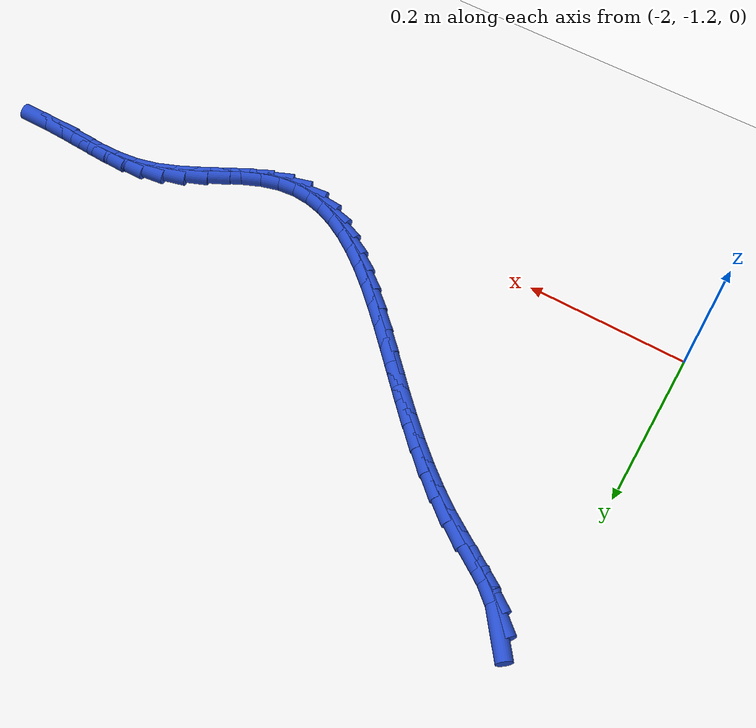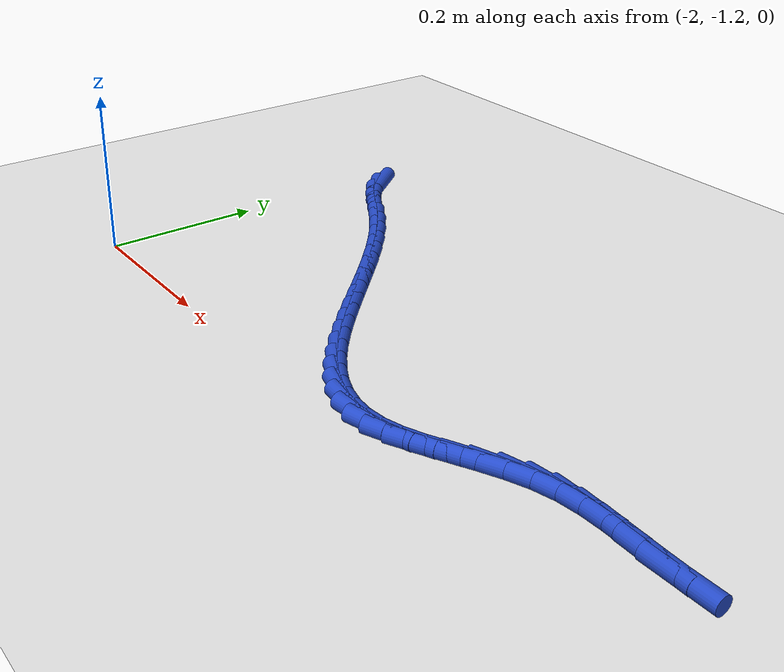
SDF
<sdf version="1.6">
 <world name="default">
  <model name="ground_plane">
   <static>1</static>
   <link name="link">
    <collision name="collision">
     <geometry><plane><normal>0 0 1</normal><size>100 100</size></plane></geometry>
     <surface><friction><ode><mu>100</mu><mu2>50</mu2></ode></friction></surface>
    </collision>
    <visual name="visual">
     <cast_shadows>0</cast_shadows>
     <geometry><plane><normal>0 0 1</normal><size>100 100</size></plane></geometry>
     <material>
      <script><uri>file://media/materials/scripts/gazebo.material</uri><name>Gazebo/WhiteGlow</name></script>
     </material>
    </visual>
   </link>
  </model>
  <model name="line">
   <link name="link_179">
    <pose>-1.9562569238793415 -0.8053483343508836 0.01 0 1.57 -0.9296200983893361</pose>
    <collision name="collision">
     <geometry><cylinder><radius>0.01</radius><length>0.08</length></cylinder></geometry>
    </collision>
    <visual name="visual">
     <material>
      <script><name>Gazebo/Blue</name><uri>file://media/materials/scripts/gazebo.material</uri></script>
     </material>
     <geometry><cylinder><radius>0.01</radius><length>0.08</length></cylinder></geometry>
    </visual>
   </link>
   <link name="link_180">
    <pose>-1.9421006748779521 -0.8243150385283774 0.01 0 1.57 -0.7267048637399415</pose>
    <collision name="collision">
     <geometry><cylinder><radius>0.01</radius><length>0.08</length></cylinder></geometry>
    </collision>
    <visual name="visual">
     <material>
      <script><name>Gazebo/Blue</name><uri>file://media/materials/scripts/gazebo.material</uri></script>
     </material>
     <geometry><cylinder><radius>0.01</radius><length>0.08</length></cylinder></geometry>
    </visual>
   </link>
   <link name="link_181">
    <pose>-1.9233412070813494 -0.8409922207654894 0.01 0 1.57 -0.6120341079765511</pose>
    <collision name="collision">
     <geometry><cylinder><radius>0.01</radius><length>0.08</length></cylinder></geometry>
    </collision>
    <visual name="visual">
     <material>
      <script><name>Gazebo/Blue</name><uri>file://media/materials/scripts/gazebo.material</uri></script>
     </material>
     <geometry><cylinder><radius>0.01</radius><length>0.08</length></cylinder></geometry>
    </visual>
   </link>
   <link name="link_182">
    <pose>-1.9013155677609832 -0.8564531385834392 0.01 0 1.57 -0.5689902051355265</pose>
    <collision name="collision">
     <geometry><cylinder><radius>0.01</radius><length>0.08</length></cylinder></geometry>
    </collision>
    <visual name="visual">
     <material>
      <script><name>Gazebo/Blue</name><uri>file://media/materials/scripts/gazebo.material</uri></script>
     </material>
     <geometry><cylinder><radius>0.01</radius><length>0.08</length></cylinder></geometry>
    </visual>
   </link>
   <link name="link_183">
    <pose>-1.8773625588727334 -0.8717721611750964 0.01 0 1.57 -0.5849054137093279</pose>
    <collision name="collision">
     <geometry><cylinder><radius>0.01</radius><length>0.08</length></cylinder></geometry>
    </collision>
    <visual name="visual">
     <material>
      <script><name>Gazebo/Blue</name><uri>file://media/materials/scripts/gazebo.material</uri></script>
     </material>
     <geometry><cylinder><radius>0.01</radius><length>0.08</length></cylinder></geometry>
    </visual>
   </link>
   <link name="link_184">
    <pose>-1.8528209753367662 -0.8880236506069747 0.01 0 1.57 -0.6424880273868654</pose>
    <collision name="collision">
     <geometry><cylinder><radius>0.01</radius><length>0.08</length></cylinder></geometry>
    </collision>
    <visual name="visual">
     <material>
      <script><name>Gazebo/Blue</name><uri>file://media/materials/scripts/gazebo.material</uri></script>
     </material>
     <geometry><cylinder><radius>0.01</radius><length>0.08</length></cylinder></geometry>
    </visual>
   </link>
   <link name="link_185">
    <pose>-1.8287727409067973 -0.9060217884132087 0.01 0 1.57 -0.6973353879191274</pose>
    <collision name="collision">
     <geometry><cylinder><radius>0.01</radius><length>0.08</length></cylinder></geometry>
    </collision>
    <visual name="visual">
     <material>
      <script><name>Gazebo/Blue</name><uri>file://media/materials/scripts/gazebo.material</uri></script>
     </material>
     <geometry><cylinder><radius>0.01</radius><length>0.08</length></cylinder></geometry>
    </visual>
   </link>
   <link name="link_186">
    <pose>-1.8053636700100173 -0.925632586559872 0.01 0 1.57 -0.7405027807116922</pose>
    <collision name="collision">
     <geometry><cylinder><radius>0.01</radius><length>0.08</length></cylinder></geometry>
    </collision>
    <visual name="visual">
     <material>
      <script><name>Gazebo/Blue</name><uri>file://media/materials/scripts/gazebo.material</uri></script>
     </material>
     <geometry><cylinder><radius>0.01</radius><length>0.08</length></cylinder></geometry>
    </visual>
   </link>
   <link name="link_187">
    <pose>-1.7825263948712546 -0.9465061283057804 0.01 0 1.57 -0.7730123900415136</pose>
    <collision name="collision">
     <geometry><cylinder><radius>0.01</radius><length>0.08</length></cylinder></geometry>
    </collision>
    <visual name="visual">
     <material>
      <script><name>Gazebo/Blue</name><uri>file://media/materials/scripts/gazebo.material</uri></script>
     </material>
     <geometry><cylinder><radius>0.01</radius><length>0.08</length></cylinder></geometry>
    </visual>
   </link>
   <link name="link_188">
    <pose>-1.7601935477153408 -0.9682924969097504 0.01 0 1.57 -0.7956473490751564</pose>
    <collision name="collision">
     <geometry><cylinder><radius>0.01</radius><length>0.08</length></cylinder></geometry>
    </collision>
    <visual name="visual">
     <material>
      <script><name>Gazebo/Blue</name><uri>file://media/materials/scripts/gazebo.material</uri></script>
     </material>
     <geometry><cylinder><radius>0.01</radius><length>0.08</length></cylinder></geometry>
    </visual>
   </link>
   <link name="link_189">
    <pose>-1.7382977607671053 -0.9906417756305983 0.01 0 1.57 -0.8088961276774072</pose>
    <collision name="collision">
     <geometry><cylinder><radius>0.01</radius><length>0.08</length></cylinder></geometry>
    </collision>
    <visual name="visual">
     <material>
      <script><name>Gazebo/Blue</name><uri>file://media/materials/scripts/gazebo.material</uri></script>
     </material>
     <geometry><cylinder><radius>0.01</radius><length>0.08</length></cylinder></geometry>
    </visual>
   </link>
   <link name="link_190">
    <pose>-1.716771666251378 -1.0132040477271407 0.01 0 1.57 -0.8129193489627489</pose>
    <collision name="collision">
     <geometry><cylinder><radius>0.01</radius><length>0.08</length></cylinder></geometry>
    </collision>
    <visual name="visual">
     <material>
      <script><name>Gazebo/Blue</name><uri>file://media/materials/scripts/gazebo.material</uri></script>
     </material>
     <geometry><cylinder><radius>0.01</radius><length>0.08</length></cylinder></geometry>
    </visual>
   </link>
   <link name="link_191">
    <pose>-1.69554789639299 -1.0356293964581926 0.01 0 1.57 -0.8075178931616087</pose>
    <collision name="collision">
     <geometry><cylinder><radius>0.01</radius><length>0.08</length></cylinder></geometry>
    </collision>
    <visual name="visual">
     <material>
      <script><name>Gazebo/Blue</name><uri>file://media/materials/scripts/gazebo.material</uri></script>
     </material>
     <geometry><cylinder><radius>0.01</radius><length>0.08</length></cylinder></geometry>
    </visual>
   </link>
   <link name="link_192">
    <pose>-1.6745590834167714 -1.057567905082571 0.01 0 1.57 -0.7920895710586465</pose>
    <collision name="collision">
     <geometry><cylinder><radius>0.01</radius><length>0.08</length></cylinder></geometry>
    </collision>
    <visual name="visual">
     <material>
      <script><name>Gazebo/Blue</name><uri>file://media/materials/scripts/gazebo.material</uri></script>
     </material>
     <geometry><cylinder><radius>0.01</radius><length>0.08</length></cylinder></geometry>
    </visual>
   </link>
   <link name="link_193">
    <pose>-1.653737859547552 -1.078669656859092 0.01 0 1.57 -0.7655680347577564</pose>
    <collision name="collision">
     <geometry><cylinder><radius>0.01</radius><length>0.08</length></cylinder></geometry>
    </collision>
    <visual name="visual">
     <material>
      <script><name>Gazebo/Blue</name><uri>file://media/materials/scripts/gazebo.material</uri></script>
     </material>
     <geometry><cylinder><radius>0.01</radius><length>0.08</length></cylinder></geometry>
    </visual>
   </link>
   <link name="link_194">
    <pose>-1.6330168570101626 -1.0985847350465725 0.01 0 1.57 -0.726345837594008</pose>
    <collision name="collision">
     <geometry><cylinder><radius>0.01</radius><length>0.08</length></cylinder></geometry>
    </collision>
    <visual name="visual">
     <material>
      <script><name>Gazebo/Blue</name><uri>file://media/materials/scripts/gazebo.material</uri></script>
     </material>
     <geometry><cylinder><radius>0.01</radius><length>0.08</length></cylinder></geometry>
    </visual>
   </link>
   <link name="link_195">
    <pose>-1.6123287080294328 -1.1169632229038278 0.01 0 1.57 -0.672200873855594</pose>
    <collision name="collision">
     <geometry><cylinder><radius>0.01</radius><length>0.08</length></cylinder></geometry>
    </collision>
    <visual name="visual">
     <material>
      <script><name>Gazebo/Blue</name><uri>file://media/materials/scripts/gazebo.material</uri></script>
     </material>
     <geometry><cylinder><radius>0.01</radius><length>0.08</length></cylinder></geometry>
    </visual>
   </link>
   <link name="link_196">
    <pose>-1.591606044830193 -1.1334552036896741 0.01 0 1.57 -0.6002851491329215</pose>
    <collision name="collision">
     <geometry><cylinder><radius>0.01</radius><length>0.08</length></cylinder></geometry>
    </collision>
    <visual name="visual">
     <material>
      <script><name>Gazebo/Blue</name><uri>file://media/materials/scripts/gazebo.material</uri></script>
     </material>
     <geometry><cylinder><radius>0.01</radius><length>0.08</length></cylinder></geometry>
    </visual>
   </link>
   <link name="link_197">
    <pose>-1.5707814996372742 -1.1477107606629287 0.01 0 1.57 -0.5073167619600821</pose>
    <collision name="collision">
     <geometry><cylinder><radius>0.01</radius><length>0.08</length></cylinder></geometry>
    </collision>
    <visual name="visual">
     <material>
      <script><name>Gazebo/Blue</name><uri>file://media/materials/scripts/gazebo.material</uri></script>
     </material>
     <geometry><cylinder><radius>0.01</radius><length>0.08</length></cylinder></geometry>
    </visual>
   </link>
   <link name="link_198">
    <pose>-1.5497877046755053 -1.1593799770824067 0.01 0 1.57 -0.3902455148764415</pose>
    <collision name="collision">
     <geometry><cylinder><radius>0.01</radius><length>0.08</length></cylinder></geometry>
    </collision>
    <visual name="visual">
     <material>
      <script><name>Gazebo/Blue</name><uri>file://media/materials/scripts/gazebo.material</uri></script>
     </material>
     <geometry><cylinder><radius>0.01</radius><length>0.08</length></cylinder></geometry>
    </visual>
   </link>
   <link name="link_199">
    <pose>-1.5285572921697166 -1.1681129362069251 0.01 0 1.57 -0.24773832472944587</pose>
    <collision name="collision">
     <geometry><cylinder><radius>0.01</radius><length>0.08</length></cylinder></geometry>
    </collision>
    <visual name="visual">
     <material>
      <script><name>Gazebo/Blue</name><uri>file://media/materials/scripts/gazebo.material</uri></script>
     </material>
     <geometry><cylinder><radius>0.01</radius><length>0.08</length></cylinder></geometry>
    </visual>
   </link>
   <link name="link_200">
    <pose>-1.5070228943447401 -1.1735597212952997 0.01 0 1.57 -0.08247091543945347</pose>
    <collision name="collision">
     <geometry><cylinder><radius>0.01</radius><length>0.08</length></cylinder></geometry>
    </collision>
    <visual name="visual">
     <material>
      <script><name>Gazebo/Blue</name><uri>file://media/materials/scripts/gazebo.material</uri></script>
     </material>
     <geometry><cylinder><radius>0.01</radius><length>0.08</length></cylinder></geometry>
    </visual>
   </link>
   <link name="link_201">
    <pose>-1.4851171434254042 -1.1753704156063463 0.01 0 1.57 0.09704770453142095</pose>
    <collision name="collision">
     <geometry><cylinder><radius>0.01</radius><length>0.08</length></cylinder></geometry>
    </collision>
    <visual name="visual">
     <material>
      <script><name>Gazebo/Blue</name><uri>file://media/materials/scripts/gazebo.material</uri></script>
     </material>
     <geometry><cylinder><radius>0.01</radius><length>0.08</length></cylinder></geometry>
    </visual>
   </link>
   <link name="link_202">
    <pose>-1.46277267163654 -1.173195102398882 0.01 0 1.57 0.2747132350601202</pose>
    <collision name="collision">
     <geometry><cylinder><radius>0.01</radius><length>0.08</length></cylinder></geometry>
    </collision>
    <visual name="visual">
     <material>
      <script><name>Gazebo/Blue</name><uri>file://media/materials/scripts/gazebo.material</uri></script>
     </material>
     <geometry><cylinder><radius>0.01</radius><length>0.08</length></cylinder></geometry>
    </visual>
   </link>
   <link name="link_203">
    <pose>-1.4399253083393395 -1.166755823305737 0.01 0 1.57 0.4045319220532383</pose>
    <collision name="collision">
     <geometry><cylinder><radius>0.01</radius><length>0.08</length></cylinder></geometry>
    </collision>
    <visual name="visual">
     <material>
      <script><name>Gazebo/Blue</name><uri>file://media/materials/scripts/gazebo.material</uri></script>
     </material>
     <geometry><cylinder><radius>0.01</radius><length>0.08</length></cylinder></geometry>
    </visual>
   </link>
   <link name="link_204">
    <pose>-1.4165542010810364 -1.1567495881436534 0.01 0 1.57 0.4713960325485745</pose>
    <collision name="collision">
     <geometry><cylinder><radius>0.01</radius><length>0.08</length></cylinder></geometry>
    </collision>
    <visual name="visual">
     <material>
      <script><name>Gazebo/Blue</name><uri>file://media/materials/scripts/gazebo.material</uri></script>
     </material>
     <geometry><cylinder><radius>0.01</radius><length>0.08</length></cylinder></geometry>
    </visual>
   </link>
   <link name="link_205">
    <pose>-1.3926696732501 -1.14457508554125 0.01 0 1.57 0.487472660731478</pose>
    <collision name="collision">
     <geometry><cylinder><radius>0.01</radius><length>0.08</length></cylinder></geometry>
    </collision>
    <visual name="visual">
     <material>
      <script><name>Gazebo/Blue</name><uri>file://media/materials/scripts/gazebo.material</uri></script>
     </material>
     <geometry><cylinder><radius>0.01</radius><length>0.08</length></cylinder></geometry>
    </visual>
   </link>
   <link name="link_206">
    <pose>-1.3682827342370816 -1.1316464440673317 0.01 0 1.57 0.4581493102250711</pose>
    <collision name="collision">
     <geometry><cylinder><radius>0.01</radius><length>0.08</length></cylinder></geometry>
    </collision>
    <visual name="visual">
     <material>
      <script><name>Gazebo/Blue</name><uri>file://media/materials/scripts/gazebo.material</uri></script>
     </material>
     <geometry><cylinder><radius>0.01</radius><length>0.08</length></cylinder></geometry>
    </visual>
   </link>
   <link name="link_207">
    <pose>-1.3434043934325306 -1.119377792290702 0.01 0 1.57 0.38224028217435</pose>
    <collision name="collision">
     <geometry><cylinder><radius>0.01</radius><length>0.08</length></cylinder></geometry>
    </collision>
    <visual name="visual">
     <material>
      <script><name>Gazebo/Blue</name><uri>file://media/materials/scripts/gazebo.material</uri></script>
     </material>
     <geometry><cylinder><radius>0.01</radius><length>0.08</length></cylinder></geometry>
    </visual>
   </link>
   <link name="link_208">
    <pose>-1.3180456602269968 -1.1091832587801649 0.01 0 1.57 0.255888267095821</pose>
    <collision name="collision">
     <geometry><cylinder><radius>0.01</radius><length>0.08</length></cylinder></geometry>
    </collision>
    <visual name="visual">
     <material>
      <script><name>Gazebo/Blue</name><uri>file://media/materials/scripts/gazebo.material</uri></script>
     </material>
     <geometry><cylinder><radius>0.01</radius><length>0.08</length></cylinder></geometry>
    </visual>
   </link>
   <link name="link_209">
    <pose>-1.2922191569290387 -1.1024264355565554 0.01 0 1.57 0.11905038908004574</pose>
    <collision name="collision">
     <geometry><cylinder><radius>0.01</radius><length>0.08</length></cylinder></geometry>
    </collision>
    <visual name="visual">
     <material>
      <script><name>Gazebo/Blue</name><uri>file://media/materials/scripts/gazebo.material</uri></script>
     </material>
     <geometry><cylinder><radius>0.01</radius><length>0.08</length></cylinder></geometry>
    </visual>
   </link>
   <link name="link_210">
    <pose>-1.265975283612277 -1.09928724763031 0.01 0 1.57 0.020215951724272662</pose>
    <collision name="collision">
     <geometry><cylinder><radius>0.01</radius><length>0.08</length></cylinder></geometry>
    </collision>
    <visual name="visual">
     <material>
      <script><name>Gazebo/Blue</name><uri>file://media/materials/scripts/gazebo.material</uri></script>
     </material>
     <geometry><cylinder><radius>0.01</radius><length>0.08</length></cylinder></geometry>
    </visual>
   </link>
   <link name="link_211">
    <pose>-1.239402600169117 -1.098749982351944 0.01 0 1.57 -0.03713203859928531</pose>
    <collision name="collision">
     <geometry><cylinder><radius>0.01</radius><length>0.08</length></cylinder></geometry>
    </collision>
    <visual name="visual">
     <material>
      <script><name>Gazebo/Blue</name><uri>file://media/materials/scripts/gazebo.material</uri></script>
     </material>
     <geometry><cylinder><radius>0.01</radius><length>0.08</length></cylinder></geometry>
    </visual>
   </link>
   <link name="link_212">
    <pose>-1.2125913558231403 -1.0997459963181078 0.01 0 1.57 -0.05412637813952204</pose>
    <collision name="collision">
     <geometry><cylinder><radius>0.01</radius><length>0.08</length></cylinder></geometry>
    </collision>
    <visual name="visual">
     <material>
      <script><name>Gazebo/Blue</name><uri>file://media/materials/scripts/gazebo.material</uri></script>
     </material>
     <geometry><cylinder><radius>0.01</radius><length>0.08</length></cylinder></geometry>
    </visual>
   </link>
   <link name="link_213">
    <pose>-1.185631799797929 -1.1012066461254526 0.01 0 1.57 -0.03311156430563486</pose>
    <collision name="collision">
     <geometry><cylinder><radius>0.01</radius><length>0.08</length></cylinder></geometry>
    </collision>
    <visual name="visual">
     <material>
      <script><name>Gazebo/Blue</name><uri>file://media/materials/scripts/gazebo.material</uri></script>
     </material>
     <geometry><cylinder><radius>0.01</radius><length>0.08</length></cylinder></geometry>
    </visual>
   </link>
   <link name="link_214">
    <pose>-1.1586124490468976 -1.1021016261973826 0.01 0 1.57 0.004519670956741282</pose>
    <collision name="collision">
     <geometry><cylinder><radius>0.01</radius><length>0.08</length></cylinder></geometry>
    </collision>
    <visual name="visual">
     <material>
      <script><name>Gazebo/Blue</name><uri>file://media/materials/scripts/gazebo.material</uri></script>
     </material>
     <geometry><cylinder><radius>0.01</radius><length>0.08</length></cylinder></geometry>
    </visual>
   </link>
  </model>
 </world>
</sdf>
